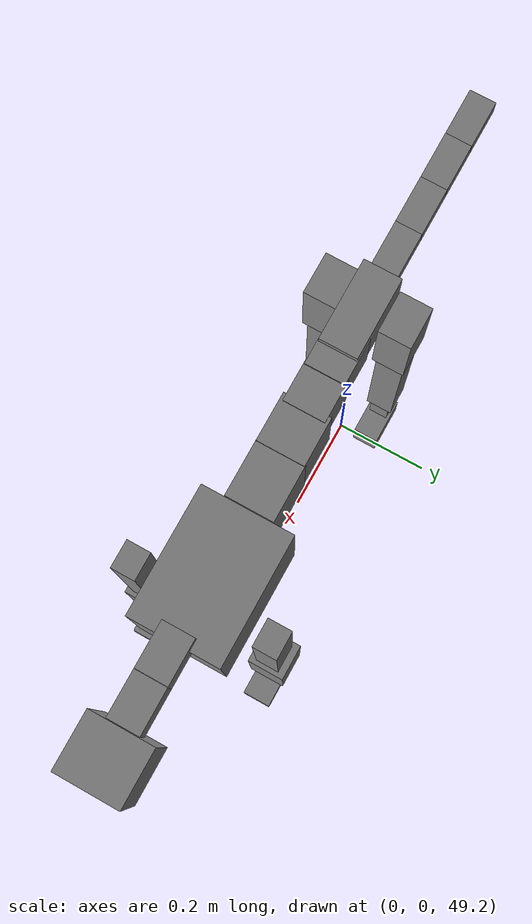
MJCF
<mujoco model="dog">

    <default>
        <joint armature="0.02" stiffness="1" damping="0.2" limited="true"/>
        <geom condim="3" friction="1 0.05 0.05" margin="0.01"/>
        <motor ctrllimited="true" ctrlrange="-1.0 1.0" forcelimited="true" gear="50"/>
    </default>

    <compiler inertiafromgeom="true" angle="radian"/>

    <option timestep="0.016" iterations="50" tolerance="1e-10" solver="Newton" jacobian="dense" cone="pyramidal"/>

    <size nconmax="20000" njmax="60000" nstack="5000000"/>
    <visual>
        <map force="0.1" zfar="30"/>
        <rgba haze="0.15 0.25 0.35 1"/>
        <quality shadowsize="2048"/>
        <global offwidth="800" offheight="800"/>
    </visual>

    <asset>
        <texture type="skybox" builtin="gradient" rgb1="0.3 0.5 0.7" rgb2="0 0 0" width="512" height="512"/>
        <texture name="texplane" type="2d" builtin="checker" rgb1=".2 .3 .4" rgb2=".1 0.15 0.2" width="512" height="512"
                 mark="cross" markrgb=".8 .8 .8"/>
        <texture name="texgeom" type="cube" builtin="flat" mark="cross" width="127" height="1278" rgb1="0.8 0.6 0.4"
                 rgb2="0.8 0.6 0.4" markrgb="1 1 1" random="0.01"/>

        <material name="matplane" reflectance="0.3" texture="texplane" texrepeat="1 1" texuniform="true"/>
        <material name="matgeom" texture="texgeom" texuniform="true" rgba="0.8 0.6 .4 1"/>
    </asset>

    <worldbody>
        <geom name="floor" pos="0 0 0" size="0 0 .25" type="plane" material="matplane" condim="3"/>

        <light directional="false" diffuse=".2 .2 .2" specular="0 0 0" pos="0 0 5" dir="0 0 -1" castshadow="false"/>
        <light mode="targetbodycom" target="torso" directional="false" diffuse=".8 .8 .8" specular="0.3 0.3 0.3"
               pos="0 0 4.0" dir="0 0 -1"/>

        <body name="root" pos="0 0 50">
            <freejoint name="root_1"/>
            <geom type="box" pos="0 0 -0.02" size="0.0774  0.0358  0.063" density="2030"/>

            <body name="spine1" pos="0.054 0 0">
                <joint name="spine1_y" axis="0 1 0" range="0 0.7" limited="true"/>
                <geom type="box" pos="0.02375 0 -0.03" size="0.04375  0.0375  0.05985" density="2030"/>

                <body name="spine2" pos="0.0612 0 0">
                    <joint name="spine2_y" axis="0 1 0" range="-0.15 0.15" limited="true"/>
                    <geom type="box" pos="0.03555  0  -0.04" size="0.04055  0.039  0.06615" density="2030"/>

                    <body name="spine3" pos="0.0730 0 0">
                        <joint name="spine3_y" axis="0 1 0" range="-0.15 0.15" limited="true"/>
                        <geom type="box" pos="0.03555  0  -0.057" size="0.04555  0.0445  0.081" density="2030"/>

                        <body name="spine4" pos="0.0780 0 0">
                            <joint name="spine4_y" axis="0 1 0" range="-0.15 0.15" limited="true"/>
                            <geom type="box" pos="0.05265  0  -0.07" size="0.05265  0.045  0.09135" density="2030"/>

                            <body name="torso" pos="0.1082 0 0">
                                <joint name="torso_y" axis="0 1 0" range="-0.15 0.15" limited="true"/>
                                <geom type="box" pos="0.11925  0  -0.085" size="0.11925  0.085  0.11745"
                                      density="2030"/>

                                <body name="neck1" pos="0.2160  0   0.0180">
                                    <joint name="neck1_y" axis="0 1 0" range="-1.2  -1" limited="true"/>
                                    <geom type="box" pos="0.0423  0  0" size="0.0423  0.03  0.036" density="2325"/>

                                    <body name="neck2" pos="0.0853  0  0">
                                        <joint name="neck2_y" axis="0 1 0" range="0.1  0" limited="true"/>
                                        <geom type="box" pos="0.0423  0  0" size="0.0423  0.03  0.036" density="2325"/>

                                        <body name="head" pos="0.0853  0  0">
                                            <joint name="head_y" axis="0 1 0" range="-0.3  -0.2" limited="true"/>
                                            <geom type="box" pos="0.0531  0  -0.055" size="0.0531  0.06  0.1044"
                                                  density="4030"/>

                                        </body>
                                    </body>
                                </body>

                                <body name="front_shoulder" pos="0.156  0   -0.0480">
                                    <joint name="front_shoulder_y" axis="0 1 0" range="-1 1.5" limited="true"/>
                                    <geom type="box" pos="0 0.13 -0.1596" size="0.0263  0.0225  0.1863" density="1158"/>
                                    <geom type="box" pos="0 -0.13 -0.1596" size="0.0263  0.0225  0.1863"
                                          density="1158"/>

                                    <body name="front_elbow" pos="0  0  -0.3192">
                                        <joint name="front_elbow_y" axis="0 1 0" range="-2 0" limited="true"/>
                                        <geom type="box" pos="0 0.13 -0.1321" size="0.0350  0.0358  0.1321"
                                              density="1081"/>
                                        <geom type="box" pos="0 -0.13 -0.1321" size="0.0350  0.0358  0.1321"
                                              density="1081"/>

                                        <body name="front_wrist" pos="0  0  -0.2642">
                                            <joint name="front_wrist_y" axis="0 1 0" range="-0.2 0" limited="true"/>
                                            <geom type="box" pos="0 0.13 -0.0355" size="0.0263  0.0292  0.0487"
                                                  density="1664"/>
                                            <geom type="box" pos="0 -0.13 -0.0355" size="0.0263  0.0292  0.0487"
                                                  density="1664"/>

                                            <body name="front_finger_end" pos="0  0  -0.0710">
                                                <joint name="front_finger_y" axis="0 1 0" range="-0.4 1"
                                                       limited="true"/>
                                                <geom type="box" pos="0.0290  0.13  -0.0147"
                                                      size="0.0532  0.0290  0.0297" density="1515"/>
                                                <geom type="box" pos="0.0290  -0.13  -0.0147"
                                                      size="0.0532  0.0290  0.0297" density="1515"/>

                                            </body>

                                        </body>
                                    </body>
                                </body>

                            </body>
                        </body>
                    </body>
                </body>
            </body>

            <body name="back_hip" pos="-0.03 0 -0.018">
                <joint name="back_hip_y" axis="0 1 0" range="-1.5 0.3" limited="true"/>
                <geom type="box" pos="0 0.07 -0.0619" size="0.0393  0.0308  0.0847" density="1154"/>
                <geom type="box" pos="0 -0.07 -0.0619" size="0.0393  0.0308  0.0847" density="1154"/>

                <body name="back_knee" pos="0  0  -0.1237">
                    <joint name="back_knee_y" axis="0 1 0" range="0 2.8" limited="true"/>
                    <geom type="box" pos="0 0.07 -0.1725" size="0.0267  0.0263  0.1880" density="1227"/>
                    <geom type="box" pos="0 -0.07 -0.1725" size="0.0267  0.0263  0.1880" density="1227"/>

                    <body name="back_ankle" pos="0  0  -0.3450">
                        <joint name="back_ankle_y" axis="0 1 0" range="-2.2 0" limited="true"/>
                        <geom type="box" pos="0 0.07 -0.0580" size="0.0191  0.0191  0.0692" density="1284"/>
                        <geom type="box" pos="0 -0.07 -0.0580" size="0.0191  0.0191  0.0692" density="1284"/>

                        <body name="back_toe_end" pos="0  0  -0.1160">
                            <joint name="back_toe_y" axis="0 1 0" range="-0.4 1" limited="true"/>
                            <geom type="box" pos="0.0253  0.07  -0.0205" size="0.0464  0.0253  0.0355" density="1515"/>
                            <geom type="box" pos="0.0253  -0.07  -0.0205" size="0.0464  0.0253  0.0355" density="1515"/>

                        </body>
                    </body>
                </body>
            </body>

            <body name="tail1" pos="-0.074 0 -0.006">
                <joint name="tail1_y" axis="0 1 0" range="-0.2 0.2" limited="true"/>
                <geom type="box" pos="-0.0536  0  0" size="0.045  0.025  0.0175" density="1587"/>

                <body name="tail2" pos="-0.09 0 0">
                    <joint name="tail2_y" axis="0 1 0" range="-0.2 0.2" limited="true"/>
                    <geom type="box" pos="-0.0536  0  0" size="0.045  0.025  0.0175" density="1587"/>

                    <body name="tail3" pos="-0.09 0 0">
                        <joint name="tail3_y" axis="0 1 0" range="-0.2 0.2" limited="true"/>
                        <geom type="box" pos="-0.0536  0  0" size="0.045  0.025  0.0175" density="1587"/>

                        <body name="tail4" pos="-0.09 0 0">
                            <joint name="tail4_y" axis="0 1 0" range="-0.2 0.2" limited="true"/>
                            <geom type="box" pos="-0.0536  0  0" size="0.045  0.025  0.0175" density="1587"/>

                        </body>
                    </body>
                </body>
            </body>
        </body>
    </worldbody>

    <actuator>
        <motor joint="spine1_y" forcerange="-150 150     "/>
        <motor joint="spine2_y" forcerange="-150 150     "/>
        <motor joint="spine3_y" forcerange="-150 150     "/>
        <motor joint="spine4_y" forcerange="-150 150     "/>
        <motor joint="torso_y" forcerange="-150 150     "/>
        <motor joint="neck1_y" forcerange="-100 100       "/>
        <motor joint="neck2_y" forcerange="-100 100       "/>
        <motor joint="head_y" forcerange="-150 150       "/>
        <motor joint="front_shoulder_y" forcerange="-137.60 112.21"/>
        <motor joint="front_elbow_y" forcerange="-172.79 187.59"/>
        <motor joint="front_wrist_y" forcerange="-121.33 112.22"/>
        <motor joint="front_finger_y" forcerange="-82.51 32.12"/>
        <motor joint="back_hip_y" forcerange="-298.88 312.08"/>
        <motor joint="back_knee_y" forcerange="-254.58 327.71"/>
        <motor joint="back_angle_y" forcerange="-64.82 141.50"/>
        <motor joint="back_toe_y" forcerange="-41.49 81.09"/>
        <motor joint="tail1_y" forcerange="-50 50     "/>
        <motor joint="tail2_y" forcerange="-50 50     "/>
        <motor joint="tail3_y" forcerange="-50 50     "/>
        <motor joint="tail4_y" forcerange="-50 50     "/>
    </actuator>
</mujoco>
